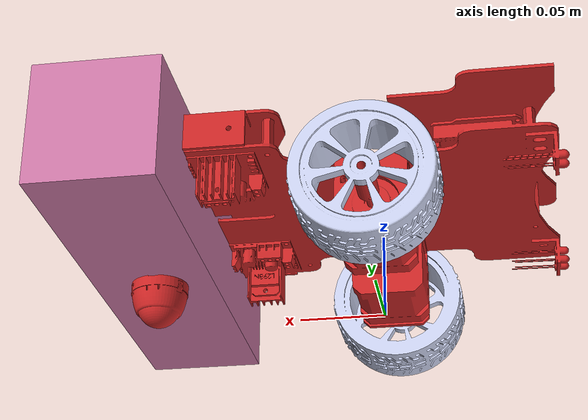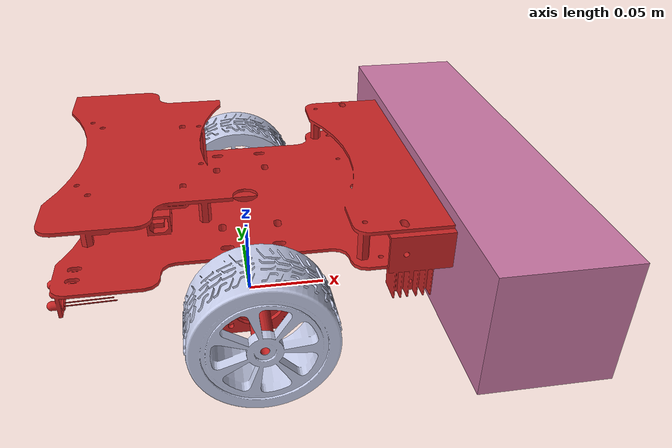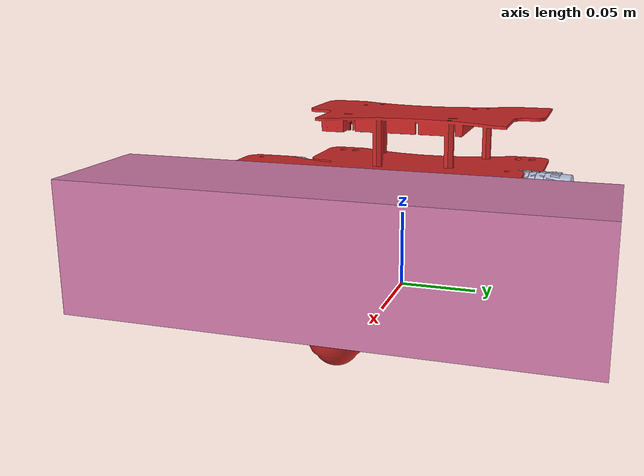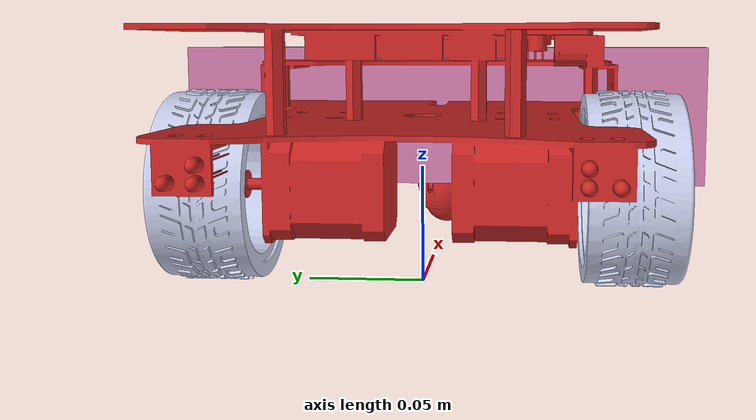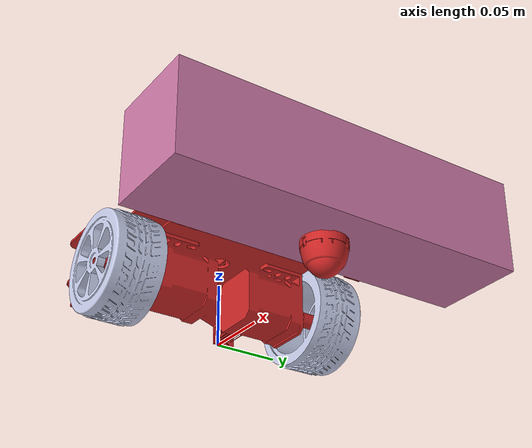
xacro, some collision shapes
<?xml version="1.0"?>
<robot  xmlns:xacro="http://ros.org/wiki/xacro"
        name="kownbot" >
    <xacro:include filename="$(find kownbot_description)/urdf/kinect.xacro" />
     <xacro:include filename="$(find kownbot_description)/urdf/kownbot_gazebo.gazebo" />
    <xacro:include filename="$(find kownbot_description)/urdf/materials.urdf.xacro" />

    <xacro:arg name="mesh_enabled" default="false" />
    <xacro:arg name="robot_namespace" default="/"/>

  <link   name =  "base_footprint"/>

    <joint name = "base_joint"  type = "fixed">
        <parent link="base_footprint"/>
        <child link="base_link"/>
        <origin xyz="0.0 0.0 0.07" rpy="0 0 0" />
        <axis xyz="0 1 0" rpy="0 0 0" />
    </joint>

  <link name="base_link">
    <inertial>
      <origin
        xyz="0.011330126346242 -0.000181604320492565 -0.022651852902026"
        rpy="0 0 0" />
      <mass
        value="1.53903472410721" />
      <inertia
        ixx="0.00077903219158376"
        ixy="2.08942350289896E-07"
        ixz="8.08564456080161E-08"
        iyy="0.000922696056233437"
        iyz="-1.05452446874585E-07"
        izz="0.00134199119233453" />
    </inertial>
    <visual>
      <origin
        xyz="0 0 0"
        rpy="0 0 0" />
      <geometry>
        <mesh
          filename="package://kownbot_description/meshes/base_link.STL" />
      </geometry>

    </visual>
    <collision>
      <origin
        xyz="0 0 0"
        rpy="0 0 0" />
      <geometry>
        <mesh
          filename="package://kownbot_description/meshes/base_link.STL" />
      </geometry>
    </collision>
  </link>

  <link
    name="left_wheel">
    <inertial>
      <origin
        xyz="2.113394875769E-10 0.0177680510267829 -1.68064256955702E-10"
        rpy="0 0 0" />
      <mass
        value="0.0967290535266856" />
      <inertia
        ixx="7.18602975356282E-05"
        ixy="3.61464994908879E-13"
        ixz="2.91883480864273E-13"
        iyy="0.000118262105464773"
        iyz="-1.28873302031774E-13"
        izz="7.18602979134469E-05" />
    </inertial>
    <visual>
      <origin
        xyz="0 0 0"
        rpy="0 0 0" />
      <geometry>
        <mesh
          filename="package://kownbot_description/meshes/left_wheel.STL" />
      </geometry>
      <material
        name="">
        <color
          rgba="0.792156862745098 0.819607843137255 0.933333333333333 1" />
      </material>
    </visual>
    <collision>
      <origin
        xyz="0 0 0"
        rpy="0 0 0" />
      <geometry>
        <mesh
          filename="package://kownbot_description/meshes/left_wheel.STL" />
      </geometry>
    </collision>
  </link>
  <joint
    name="left_wheel_joint"
    type="continuous">
    <origin
      xyz="0 0.071668 -0.0284"
      rpy="0 0 0" />
    <parent
      link="base_link" />
    <child
      link="left_wheel" />
    <axis
      xyz="0 1 0"  rpy="0 0 0"/>
  </joint>

  <transmission name="left_wheel_trans" type="SimpleTransmission">
      <type>hardware_interface/VelocityJointInterface</type>
	<actuator name="left_wheel_motor">
	   <mechanicalReduction>1</mechanicalReduction>
	</actuator>
	<joint name="left_wheel_joint">
	   <hardwareInterface>hardware_interface/VelocityJointInterface</hardwareInterface>
	</joint>
  </transmission>

  <link
    name="right_wheel">
    <inertial>
      <origin
        xyz="-1.56448132226927E-10 -0.017768051026074 -3.36882327589549E-10"
        rpy="0 0 0" />
      <mass
        value="0.0967290535274189" />
      <inertia
        ixx="7.18602977346931E-05"
        ixy="3.17497192852541E-13"
        ixz="-3.48076824472087E-13"
        iyy="0.000118262105464592"
        iyz="2.68279255047089E-13"
        izz="7.18602977142813E-05" />
    </inertial>
    <visual>
      <origin
        xyz="0 0 0"
        rpy="0 0 0" />
      <geometry>
        <mesh
          filename="package://kownbot_description/meshes/right_wheel.STL" />
      </geometry>
      <material
        name="">
        <color
          rgba="0.792156862745098 0.819607843137255 0.933333333333333 1" />
      </material>
    </visual>
    <collision>
      <origin
        xyz="0 0 0"
        rpy="0 0 0" />
      <geometry>
        <mesh
          filename="package://kownbot_description/meshes/right_wheel.STL" />
      </geometry>
    </collision>
  </link>
  <joint
    name="right_wheel_joint"
    type="continuous">
    <origin
      xyz="0 -0.0716681397513279 -0.0284000000437361"
      rpy="0 0 0" />
    <parent
      link="base_link" />
    <child
      link="right_wheel" />
    <axis
      xyz="0 1 0"  rpy="0 0 0"/>
  </joint>
<transmission name="right_wheel_trans" type="SimpleTransmission">
      <type>hardware_interface/VelocityJointInterface</type>
	<actuator name="right_wheel_motor">
	   <mechanicalReduction>1</mechanicalReduction>
	</actuator>
	<joint name="right_wheel_joint">
	   <hardwareInterface>hardware_interface/VelocityJointInterface</hardwareInterface>
	</joint>
  </transmission>

    <xacro:sensor_kinect parent="base_link" />

    <gazebo>
        <plugin name="gazebo_ros_control" filename="libgazebo_ros_control.so">
        <robotNamespace>$(arg robot_namespace)</robotNamespace>
        <legacyModeNS>true</legacyModeNS>
        </plugin>
    </gazebo>

</robot>

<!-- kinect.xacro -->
<robot name="sensor_kinect" xmlns:xacro="http://ros.org/wiki/xacro">

  <xacro:property  name="cam_px" value="0.17"/>
  <xacro:property name="cam_py" value="0"/>
  <xacro:property name="cam_pz" value="0.01" />
   <xacro:property name="cam_or" value="0" />
  <xacro:property name="cam_op" value="0"/>
  <xacro:property name="cam_oy" value="0"/>
  <xacro:property name="M_PI" value="3.14" />

  <!-- Parameterised in part by the values in turtlebot_properties.urdf.xacro -->
  <xacro:macro name="sensor_kinect" params="parent">
    <joint name="camera_rgb_joint" type="fixed">
      <origin xyz="${cam_px} ${cam_py} ${cam_pz}" rpy="${cam_or} ${cam_op} ${cam_oy}"/>
      <parent link="${parent}"/>
      <child link="camera_rgb_frame" />
    </joint>
    <link name="camera_rgb_frame">
      <inertial>
        <mass value="0.001" />
        <origin xyz="0 0 0" />
        <inertia ixx="0.0001" ixy="0.0" ixz="0.0"
                 iyy="0.0001" iyz="0.0"
                 izz="0.0001" />
      </inertial>
    </link>
    <joint name="camera_rgb_optical_joint" type="fixed">
      <origin xyz="0 0 0" rpy="${-M_PI/2} 0 ${-M_PI/2}" />
      <parent link="camera_rgb_frame" />
      <child link="camera_rgb_optical_frame" />
    </joint>
    <link name="camera_rgb_optical_frame">
      <inertial>
        <mass value="0.001" />
        <origin xyz="0 0 0" />
        <inertia ixx="0.0001" ixy="0.0" ixz="0.0"
                 iyy="0.0001" iyz="0.0"
                 izz="0.0001" />
      </inertial>
    </link>

  <joint name="camera_joint" type="fixed">
    <origin xyz="-0.031 ${-cam_py} -0.016" rpy="0 0 0"/>
    <parent link="camera_rgb_frame"/>
    <child link="camera_link"/>
  </joint>
    <link name="camera_link">
    <visual>
     <origin xyz="0 0 0" rpy="0 0 0"/>
      <geometry>
       <mesh filename="package://kownbot_description/meshes/sensors/kinect.dae"/>
      </geometry>
    </visual>
	  <collision>
      <origin xyz="0.0 0.0 0.0" rpy="0 0 0"/>
	    <geometry>
	      <box size="0.07271 0.27794 0.073"/>
	    </geometry>
	  </collision>
    <inertial>
      <mass value="0.001" />
      <origin xyz="0 0 0" />
      <inertia ixx="0.0001" ixy="0.0" ixz="0.0"
               iyy="0.0001" iyz="0.0"
               izz="0.0001" />
    </inertial>
  </link>

	<joint name="camera_depth_joint" type="fixed">
	  <origin xyz="0 ${2 * -cam_py} 0" rpy="0 0 0" />
	  <parent link="camera_rgb_frame" />
	  <child link="camera_depth_frame" />
	</joint>
	<link name="camera_depth_frame">
    <inertial>
      <mass value="0.001" />
      <origin xyz="0 0 0" />
      <inertia ixx="0.0001" ixy="0.0" ixz="0.0"
               iyy="0.0001" iyz="0.0"
               izz="0.0001" />
    </inertial>
	</link>
	<joint name="camera_depth_optical_joint" type="fixed">
	  <origin xyz="0 0 0" rpy="${-M_PI/2} 0 ${-M_PI/2}" />
	  <parent link="camera_depth_frame" />
	  <child link="camera_depth_optical_frame" />
	</joint>
	<link name="camera_depth_optical_frame">
    <inertial>
      <mass value="0.001" />
      <origin xyz="0 0 0" />
      <inertia ixx="0.0001" ixy="0.0" ixz="0.0"
               iyy="0.0001" iyz="0.0"
               izz="0.0001" />
    </inertial>
	</link>

  </xacro:macro>
</robot>
